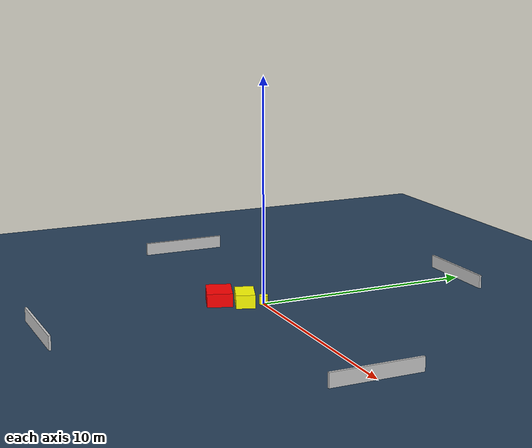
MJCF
<?xml version="1.0" ?>
<mujoco model="generated_environment">
  <option timestep="0.01" integrator="RK4" cone="elliptic"/>
  <default>
    <geom density="1"/>
  </default>
  <asset>
    <texture builtin="gradient" height="3072" name="skybox" rgb1="0.3 0.5 0.7" rgb2="0 0 0" type="skybox" width="512"/>
    <texture builtin="checker" height="300" name="groundplane" rgb1="0.2 0.3 0.4" rgb2="0.1 0.2 0.3" type="2d" width="300"/>
    <material name="groundplane" reflectance="0.2" texrepeat="5 5" texture="groundplane"/>
  </asset>
  <worldbody>
    <light dir="0 0 -1" directional="true" pos="0 0 1.5"/>
    <geom condim="3" friction="0.5 0.005 0.001" material="groundplane" name="floor" pos="0 0 0" size="0 0 0.05" type="plane"/>
    <body name="walls">
      <geom name="wall_1" condim="4" pos="-10.0 0.0 0.3" rgba="0.800000011920929 0.800000011920929 0.800000011920929 1.0" size="0.05 2.0 0.3" type="box"/>
      <geom name="wall_2" condim="4" pos="10.0 0.0 0.3" rgba="0.800000011920929 0.800000011920929 0.800000011920929 1.0" size="0.05 2.0 0.3" type="box"/>
      <geom name="wall_3" condim="4" pos="0.0 -10.0 0.3" rgba="0.800000011920929 0.800000011920929 0.800000011920929 1.0" size="2.0 0.05 0.3" type="box"/>
      <geom name="wall_4" condim="4" pos="0.0 10.0 0.3" rgba="0.800000011920929 0.800000011920929 0.800000011920929 1.0" size="2.0 0.05 0.3" type="box"/>
    </body>
    <body name="robot">
      <joint name="joint_x" type="slide" pos="0 0 0" axis="1 0 0"/>
      <joint name="joint_y" type="slide" pos="0 0 0" axis="0 1 0"/>
      <geom name="robot" type="cylinder" pos="0.0 0.0 0.2" size="0.2 0.2 0.0" mass="5.0" friction="1.0 0.005 0.0001" condim="4" rgba="1.0 1.0 0.0 1.0"/>
    </body>
    <body name="obstacle_1_movable">
      <geom name="obstacle_1_movable" condim="4" pos="-0.33062024128893963 -0.761087845802428 0.3" euler="0 0 69.95315122353726" friction="0.0 0.005 0.001" rgba="1.0 1.0 0.0 1.0" size="0.42392844822642245 0.6910049936265275 0.3" type="box" mass="0.1"/>
      <joint type="free"/>
    </body>
    <body name="obstacle_2_static">
      <geom name="obstacle_2_static" condim="4" pos="-1.05506922665365 -1.6822107752598874 0.3" euler="0 0 160.910736548538" friction="0.0 0.005 0.001" rgba="1.0 0.0 0.0 1.0" size="0.7690153199624521 0.5666737123827392 0.3" type="box"/>
    </body>
  </worldbody>
  <actuator>
    <motor name="actuator_x" joint="joint_x" gear="1" ctrlrange="-1 1"/>
    <motor name="actuator_y" joint="joint_y" gear="1" ctrlrange="-1 1"/>
  </actuator>
</mujoco>
